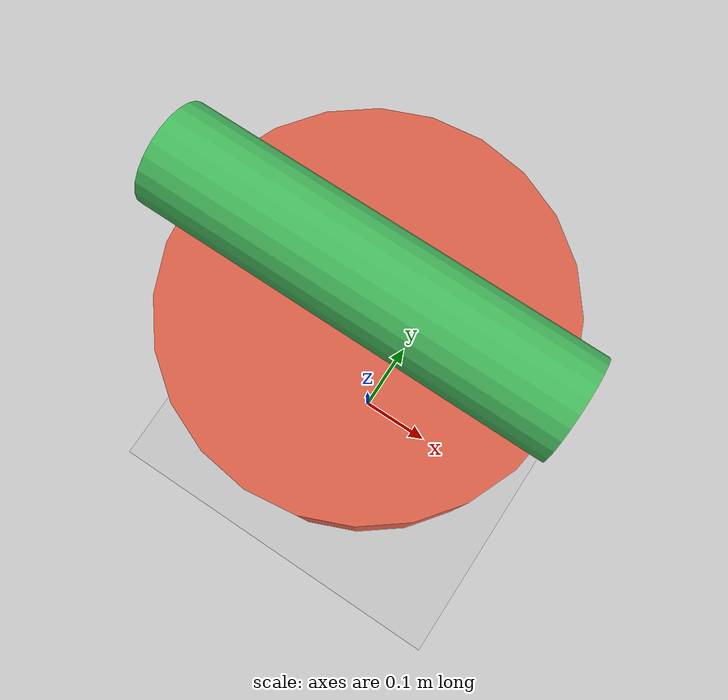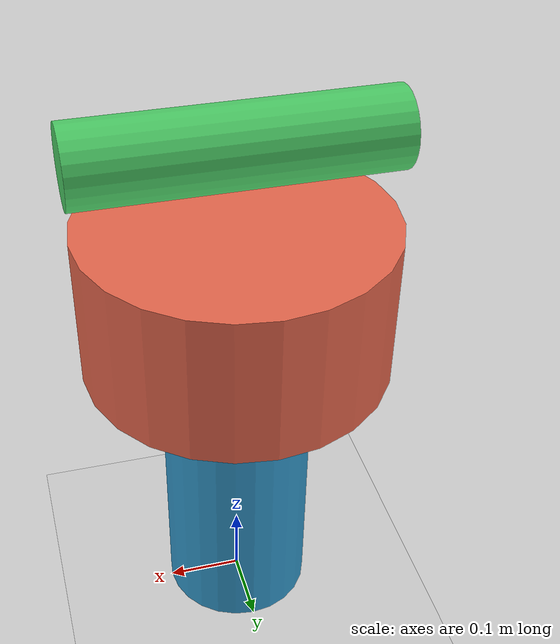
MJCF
<mujoco model="three_cylinders_yaw_pitch">
  <statistic center="0 0 0.5"/>

  <worldbody>
    <!-- 地板與光源 -->
    <geom name="floor" size="1 1 .05" type="plane" rgba="0.8 0.8 0.8 1"/>
    <light pos="0 0 3"/>

    <!-- 1. 底座圓柱體 (Base Cylinder) -->
    <body name="base_cylinder" pos="0 0 0.2">
      <geom name="base_geom" type="cylinder" size="0.1 0.2" rgba="0.2 0.6 0.8 1"/>

      <!-- 2. 中間圓柱體 (Top Cylinder) - Yaw 旋轉 -->
      <body name="top_cylinder" pos="0 0 0.3">
        <!-- Yaw 關節 (繞 Z 軸) -->
        <joint name="yaw_joint" type="hinge" axis="0 0 1" range="-90 90" limited="true"/>
        <geom name="top_geom" type="cylinder" size="0.2 0.1" rgba="0.9 0.4 0.3 1"/>

        <!-- 3. 最上層圓柱體 (Pitch Cylinder) - 朝向 X 軸 -->
        <!-- 相對位置設在中間圓柱體上方 Z = 0.1 (中間半高) + 0.1 (新關節偏移) -->
        <body name="pitch_cylinder" pos="0 0 0.2">

          <!-- 【關鍵 1】只能 Pitch 旋轉的關節 (繞 Y 軸旋轉) -->
          <joint name="pitch_joint" type="hinge" axis="1 0 0" range="-60 60" limited="true"/>

          <!-- 【關鍵 2】圓柱體朝向 X 軸 -->
          <!-- euler="0 90 0" 代表將圓柱體繞 Y 軸轉動 90 度，使其原本指向 Z 的軸心轉為指向 X 軸 -->
          <!-- size="0.05 0.2" 表示：半徑 0.05m，沿著 X 軸的半長度為 0.2m (總長 0.4m) -->
          <geom name="pitch_geom" type="cylinder" size="0.05 0.2" euler="0 90 0" rgba="0.3 0.8 0.4 1"/>

        </body>
      </body>
    </body>
  </worldbody>

  <!-- 馬達驅動器 (可分別控制 Yaw 與 Pitch 關節) -->
  <actuator>
    <motor name="yaw_motor" joint="yaw_joint" gear="10"/>
    <motor name="pitch_motor" joint="pitch_joint" gear="10"/>
  </actuator>
</mujoco>
